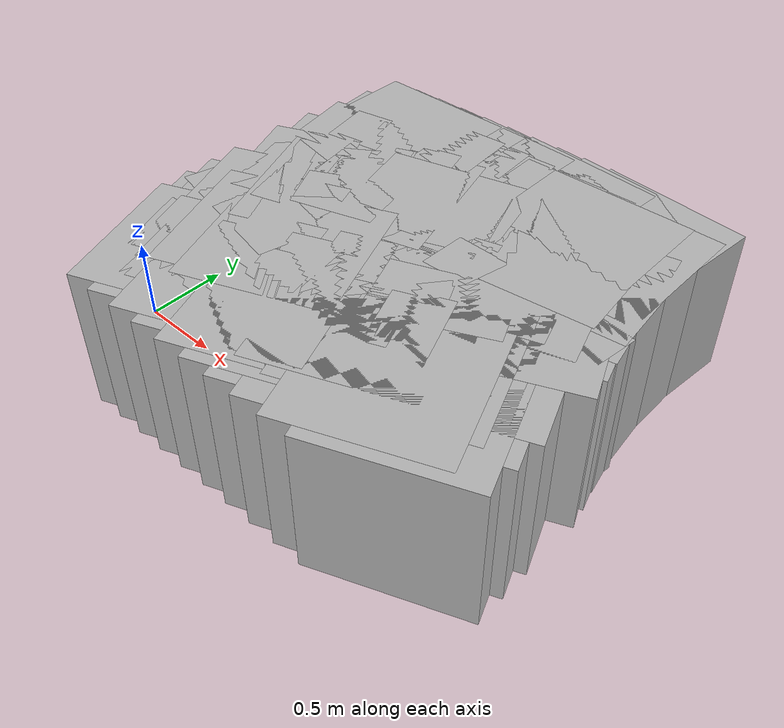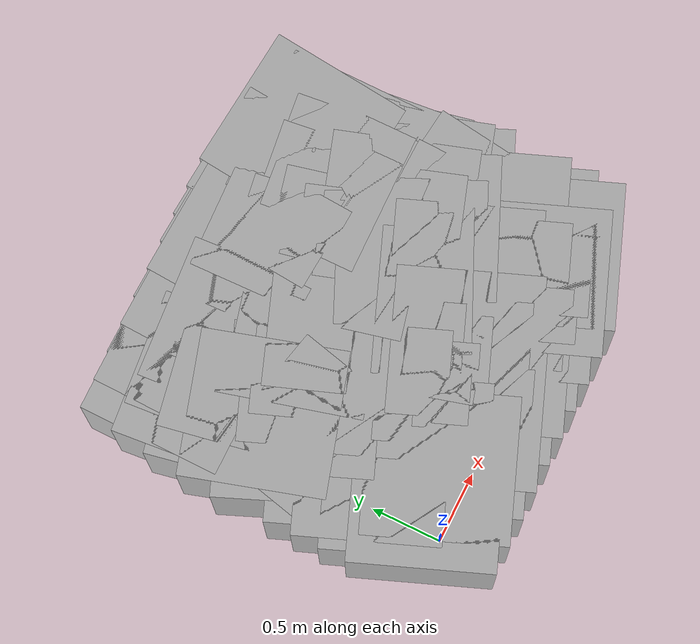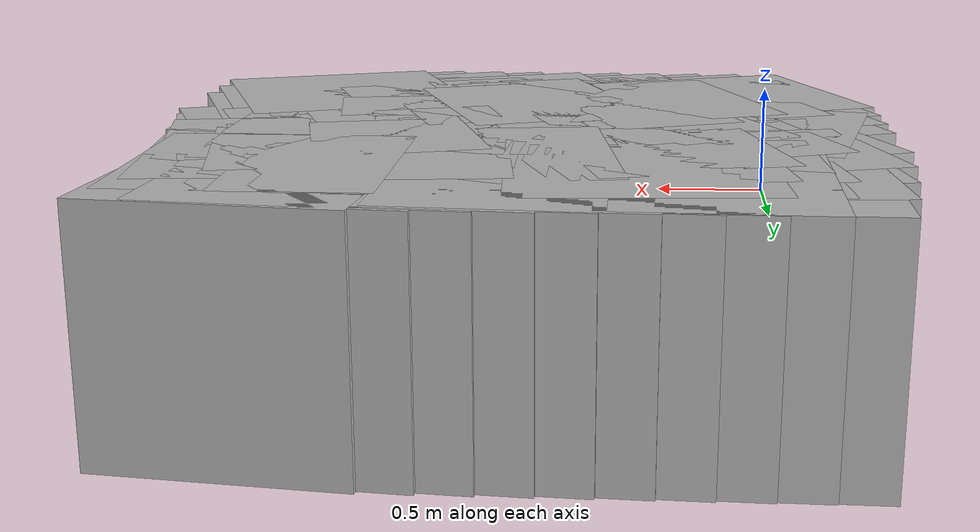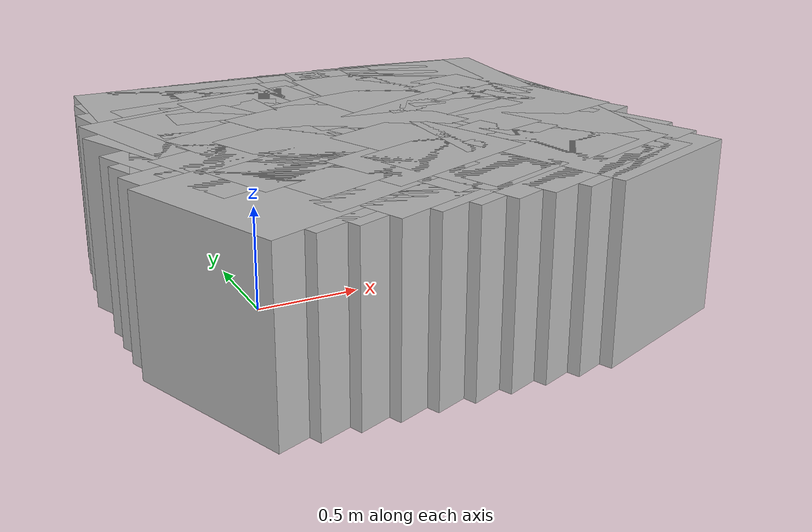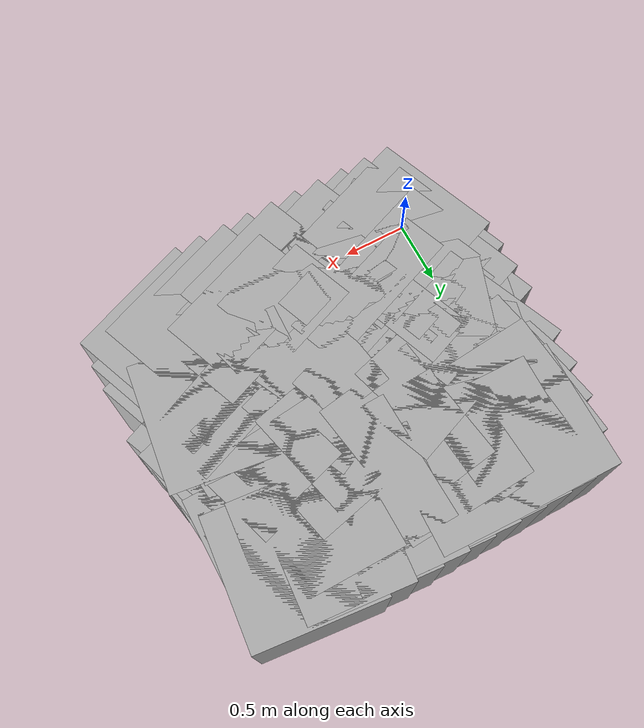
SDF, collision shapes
<?xml version="1.0" ?>
<sdf version="1.5">
  <model name="crops">
    <static>true</static>
    <include>
  <uri>model://crop</uri>
  <name>crop101</name>
  <pose>0.2 0.2 0.005 0 0 -1.2</pose>
</include>
<include>
  <uri>model://crop</uri>
  <name>crop102</name>
  <pose>0.4 0.2 0.005 0 0 -1.2</pose>
</include>
<include>
  <uri>model://crop</uri>
  <name>crop103</name>
  <pose>0.6 0.2 0.005 0 0 -1.2</pose>
</include>
<include>
  <uri>model://crop</uri>
  <name>crop104</name>
  <pose>0.8 0.2 0.005 0 0 -1.2</pose>
</include>
<include>
  <uri>model://crop</uri>
  <name>crop105</name>
  <pose>1.0 0.2 0.005 0 0 -1.2</pose>
</include>
<include>
  <uri>model://crop</uri>
  <name>crop106</name>
  <pose>1.2 0.2 0.005 0 0 -1.2</pose>
</include>
<include>
  <uri>model://crop</uri>
  <name>crop107</name>
  <pose>1.4 0.2 0.005 0 0 -1.2</pose>
</include>
<include>
  <uri>model://crop</uri>
  <name>crop108</name>
  <pose>1.6 0.2 0.005 0 0 -1.2</pose>
</include>
<include>
  <uri>model://crop</uri>
  <name>crop109</name>
  <pose>1.8 0.2 0.005 0 0 -1.2</pose>
</include>
<include>
  <uri>model://crop</uri>
  <name>crop110</name>
  <pose>2.0 0.2 0.005 0 0 -1.2</pose>
</include>
<include>
  <uri>model://crop</uri>
  <name>crop111</name>
  <pose>0.2 0.4 0.005 0 0 -1.2</pose>
</include>
<include>
  <uri>model://crop</uri>
  <name>crop112</name>
  <pose>0.4 0.4 0.005 0 0 -1.2</pose>
</include>
<include>
  <uri>model://crop</uri>
  <name>crop113</name>
  <pose>0.6 0.4 0.005 0 0 -1.2</pose>
</include>
<include>
  <uri>model://crop</uri>
  <name>crop114</name>
  <pose>0.8 0.4 0.005 0 0 -1.2</pose>
</include>
<include>
  <uri>model://crop</uri>
  <name>crop115</name>
  <pose>1.0 0.4 0.005 0 0 -1.2</pose>
</include>
<include>
  <uri>model://crop</uri>
  <name>crop116</name>
  <pose>1.2 0.4 0.005 0 0 -1.2</pose>
</include>
<include>
  <uri>model://crop</uri>
  <name>crop117</name>
  <pose>1.4 0.4 0.005 0 0 -1.2</pose>
</include>
<include>
  <uri>model://crop</uri>
  <name>crop118</name>
  <pose>1.6 0.4 0.005 0 0 -1.2</pose>
</include>
<include>
  <uri>model://crop</uri>
  <name>crop119</name>
  <pose>1.8 0.4 0.005 0 0 -1.2</pose>
</include>
<include>
  <uri>model://crop</uri>
  <name>crop120</name>
  <pose>2.0 0.4 0.005 0 0 -1.2</pose>
</include>
<include>
  <uri>model://crop</uri>
  <name>crop121</name>
  <pose>0.2 0.6 0.005 0 0 -1.2</pose>
</include>
<include>
  <uri>model://crop</uri>
  <name>crop122</name>
  <pose>0.4 0.6 0.005 0 0 -1.2</pose>
</include>
<include>
  <uri>model://crop</uri>
  <name>crop123</name>
  <pose>0.6 0.6 0.005 0 0 -1.2</pose>
</include>
<include>
  <uri>model://crop</uri>
  <name>crop124</name>
  <pose>0.8 0.6 0.005 0 0 -1.2</pose>
</include>
<include>
  <uri>model://crop</uri>
  <name>crop125</name>
  <pose>1.0 0.6 0.005 0 0 -1.2</pose>
</include>
<include>
  <uri>model://crop</uri>
  <name>crop126</name>
  <pose>1.2 0.6 0.005 0 0 -1.2</pose>
</include>
<include>
  <uri>model://crop</uri>
  <name>crop127</name>
  <pose>1.4 0.6 0.005 0 0 -1.2</pose>
</include>
<include>
  <uri>model://crop</uri>
  <name>crop128</name>
  <pose>1.6 0.6 0.005 0 0 -1.2</pose>
</include>
<include>
  <uri>model://crop</uri>
  <name>crop129</name>
  <pose>1.8 0.6 0.005 0 0 -1.2</pose>
</include>
<include>
  <uri>model://crop</uri>
  <name>crop130</name>
  <pose>2.0 0.6 0.005 0 0 -1.2</pose>
</include>
<include>
  <uri>model://crop</uri>
  <name>crop131</name>
  <pose>0.2 0.8 0.005 0 0 -1.2</pose>
</include>
<include>
  <uri>model://crop</uri>
  <name>crop132</name>
  <pose>0.4 0.8 0.005 0 0 -1.2</pose>
</include>
<include>
  <uri>model://crop</uri>
  <name>crop133</name>
  <pose>0.6 0.8 0.005 0 0 -1.2</pose>
</include>
<include>
  <uri>model://crop</uri>
  <name>crop134</name>
  <pose>0.8 0.8 0.005 0 0 -1.2</pose>
</include>
<include>
  <uri>model://crop</uri>
  <name>crop135</name>
  <pose>1.0 0.8 0.005 0 0 -1.2</pose>
</include>
<include>
  <uri>model://crop</uri>
  <name>crop136</name>
  <pose>1.2 0.8 0.005 0 0 -1.3</pose>
</include>
<include>
  <uri>model://crop</uri>
  <name>crop137</name>
  <pose>1.4 0.8 0.005 0 0 -1.4</pose>
</include>
<include>
  <uri>model://crop</uri>
  <name>crop138</name>
  <pose>1.6 0.8 0.005 0 0 -1.5</pose>
</include>
<include>
  <uri>model://crop</uri>
  <name>crop139</name>
  <pose>1.8 0.8 0.005 0 0 -1.6</pose>
</include>
<include>
  <uri>model://crop</uri>
  <name>crop140</name>
  <pose>2.0 0.8 0.005 0 0 -1.7</pose>
</include>
<include>
  <uri>model://crop</uri>
  <name>crop141</name>
  <pose>0.2 1.0 0.005 0 0 -1.8</pose>
</include>
<include>
  <uri>model://crop</uri>
  <name>crop142</name>
  <pose>0.4 1.0 0.005 0 0 -1.9</pose>
</include>
<include>
  <uri>model://crop</uri>
  <name>crop143</name>
  <pose>0.6 1.0 0.005 0 0 -1.10</pose>
</include>
<include>
  <uri>model://crop</uri>
  <name>crop144</name>
  <pose>0.8 1.0 0.005 0 0 -1.11</pose>
</include>
<include>
  <uri>model://crop</uri>
  <name>crop145</name>
  <pose>1.0 1.0 0.005 0 0 -1.12</pose>
</include>
<include>
  <uri>model://crop</uri>
  <name>crop146</name>
  <pose>1.2 1.0 0.005 0 0 -1.13</pose>
</include>
<include>
  <uri>model://crop</uri>
  <name>crop147</name>
  <pose>1.4 1.0 0.005 0 0 -1.14</pose>
</include>
<include>
  <uri>model://crop</uri>
  <name>crop148</name>
  <pose>1.6 1.0 0.005 0 0 -1.15</pose>
</include>
<include>
  <uri>model://crop</uri>
  <name>crop149</name>
  <pose>1.8 1.0 0.005 0 0 -1.16</pose>
</include>
<include>
  <uri>model://crop</uri>
  <name>crop150</name>
  <pose>2.0 1.0 0.005 0 0 -1.17</pose>
</include>
<include>
  <uri>model://crop</uri>
  <name>crop151</name>
  <pose>0.2 1.2 0.005 0 0 -1.18</pose>
</include>
<include>
  <uri>model://crop</uri>
  <name>crop152</name>
  <pose>0.4 1.2 0.005 0 0 -1.19</pose>
</include>
<include>
  <uri>model://crop</uri>
  <name>crop153</name>
  <pose>0.6 1.2 0.005 0 0 -1.20</pose>
</include>
<include>
  <uri>model://crop</uri>
  <name>crop154</name>
  <pose>0.8 1.2 0.005 0 0 -1.21</pose>
</include>
<include>
  <uri>model://crop</uri>
  <name>crop155</name>
  <pose>1.0 1.2 0.005 0 0 -1.22</pose>
</include>
<include>
  <uri>model://crop</uri>
  <name>crop156</name>
  <pose>1.2 1.2 0.005 0 0 -1.23</pose>
</include>
<include>
  <uri>model://crop</uri>
  <name>crop157</name>
  <pose>1.4 1.2 0.005 0 0 -1.24</pose>
</include>
<include>
  <uri>model://crop</uri>
  <name>crop158</name>
  <pose>1.6 1.2 0.005 0 0 -1.25</pose>
</include>
<include>
  <uri>model://crop</uri>
  <name>crop159</name>
  <pose>1.8 1.2 0.005 0 0 -1.26</pose>
</include>
<include>
  <uri>model://crop</uri>
  <name>crop160</name>
  <pose>2.0 1.2 0.005 0 0 -1.27</pose>
</include>
<include>
  <uri>model://crop</uri>
  <name>crop161</name>
  <pose>0.2 1.4 0.005 0 0 -1.28</pose>
</include>
<include>
  <uri>model://crop</uri>
  <name>crop162</name>
  <pose>0.4 1.4 0.005 0 0 -1.29</pose>
</include>
<include>
  <uri>model://crop</uri>
  <name>crop163</name>
  <pose>0.6 1.4 0.005 0 0 -1.30</pose>
</include>
<include>
  <uri>model://crop</uri>
  <name>crop164</name>
  <pose>0.8 1.4 0.005 0 0 -1.31</pose>
</include>
<include>
  <uri>model://crop</uri>
  <name>crop165</name>
  <pose>1.0 1.4 0.005 0 0 -1.32</pose>
</include>
<include>
  <uri>model://crop</uri>
  <name>crop166</name>
  <pose>1.2 1.4 0.005 0 0 -1.33</pose>
</include>
<include>
  <uri>model://crop</uri>
  <name>crop167</name>
  <pose>1.4 1.4 0.005 0 0 -1.34</pose>
</include>
<include>
  <uri>model://crop</uri>
  <name>crop168</name>
  <pose>1.6 1.4 0.005 0 0 -1.35</pose>
</include>
<include>
  <uri>model://crop</uri>
  <name>crop169</name>
  <pose>1.8 1.4 0.005 0 0 -1.36</pose>
</include>
<include>
  <uri>model://crop</uri>
  <name>crop170</name>
  <pose>2.0 1.4 0.005 0 0 -1.37</pose>
</include>
<include>
  <uri>model://crop</uri>
  <name>crop171</name>
  <pose>0.2 1.6 0.005 0 0 -1.38</pose>
</include>
<include>
  <uri>model://crop</uri>
  <name>crop172</name>
  <pose>0.4 1.6 0.005 0 0 -1.39</pose>
</include>
<include>
  <uri>model://crop</uri>
  <name>crop173</name>
  <pose>0.6 1.6 0.005 0 0 -1.40</pose>
</include>
<include>
  <uri>model://crop</uri>
  <name>crop174</name>
  <pose>0.8 1.6 0.005 0 0 -1.41</pose>
</include>
<include>
  <uri>model://crop</uri>
  <name>crop175</name>
  <pose>1.0 1.6 0.005 0 0 -1.42</pose>
</include>
<include>
  <uri>model://crop</uri>
  <name>crop176</name>
  <pose>1.2 1.6 0.005 0 0 -1.43</pose>
</include>
<include>
  <uri>model://crop</uri>
  <name>crop177</name>
  <pose>1.4 1.6 0.005 0 0 -1.44</pose>
</include>
<include>
  <uri>model://crop</uri>
  <name>crop178</name>
  <pose>1.6 1.6 0.005 0 0 -1.45</pose>
</include>
<include>
  <uri>model://crop</uri>
  <name>crop179</name>
  <pose>1.8 1.6 0.005 0 0 -1.46</pose>
</include>
<include>
  <uri>model://crop</uri>
  <name>crop180</name>
  <pose>2.0 1.6 0.005 0 0 -1.47</pose>
</include>
<include>
  <uri>model://crop</uri>
  <name>crop181</name>
  <pose>0.2 1.8 0.005 0 0 -1.48</pose>
</include>
<include>
  <uri>model://crop</uri>
  <name>crop182</name>
  <pose>0.4 1.8 0.005 0 0 -1.49</pose>
</include>
<include>
  <uri>model://crop</uri>
  <name>crop183</name>
  <pose>0.6 1.8 0.005 0 0 -1.50</pose>
</include>
<include>
  <uri>model://crop</uri>
  <name>crop184</name>
  <pose>0.8 1.8 0.005 0 0 -1.51</pose>
</include>
<include>
  <uri>model://crop</uri>
  <name>crop185</name>
  <pose>1.0 1.8 0.005 0 0 -1.52</pose>
</include>
<include>
  <uri>model://crop</uri>
  <name>crop186</name>
  <pose>1.2 1.8 0.005 0 0 -1.53</pose>
</include>
<include>
  <uri>model://crop</uri>
  <name>crop187</name>
  <pose>1.4 1.8 0.005 0 0 -1.54</pose>
</include>
<include>
  <uri>model://crop</uri>
  <name>crop188</name>
  <pose>1.6 1.8 0.005 0 0 -1.55</pose>
</include>
<include>
  <uri>model://crop</uri>
  <name>crop189</name>
  <pose>1.8 1.8 0.005 0 0 -1.56</pose>
</include>
<include>
  <uri>model://crop</uri>
  <name>crop190</name>
  <pose>2.0 1.8 0.005 0 0 -1.57</pose>
</include>
<include>
  <uri>model://crop</uri>
  <name>crop191</name>
  <pose>0.2 2.0 0.005 0 0 -1.58</pose>
</include>
<include>
  <uri>model://crop</uri>
  <name>crop192</name>
  <pose>0.4 2.0 0.005 0 0 -1.59</pose>
</include>
<include>
  <uri>model://crop</uri>
  <name>crop193</name>
  <pose>0.6 2.0 0.005 0 0 -1.60</pose>
</include>
<include>
  <uri>model://crop</uri>
  <name>crop194</name>
  <pose>0.8 2.0 0.005 0 0 -1.61</pose>
</include>
<include>
  <uri>model://crop</uri>
  <name>crop195</name>
  <pose>1.0 2.0 0.005 0 0 -1.62</pose>
</include>
<include>
  <uri>model://crop</uri>
  <name>crop196</name>
  <pose>1.2 2.0 0.005 0 0 -1.63</pose>
</include>
<include>
  <uri>model://crop</uri>
  <name>crop197</name>
  <pose>1.4 2.0 0.005 0 0 -1.64</pose>
</include>
<include>
  <uri>model://crop</uri>
  <name>crop198</name>
  <pose>1.6 2.0 0.005 0 0 -1.65</pose>
</include>
<include>
  <uri>model://crop</uri>
  <name>crop199</name>
  <pose>1.8 2.0 0.005 0 0 -1.66</pose>
</include>
<include>
  <uri>model://crop</uri>
  <name>crop200</name>
  <pose>2.0 2.0 0.005 0 0 -1.67</pose>
</include>
  </model>
</sdf>

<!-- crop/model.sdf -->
<sdf version="1.5">
  <model name="crop">
    <pose>0 0 0.75  0 0 0</pose>
    <static>true</static>
    <link name="link">
      <inertial>
        <mass>40.0</mass>
        <inertia>
          <ixx>1</ixx>
          <ixy>0</ixy>
          <ixz>0</ixz>
          <iyy>1</iyy>
          <iyz>0</iyz>
          <izz>1</izz>
        </inertia>
      </inertial>
      <collision name="collision">
        <geometry>
          <box>
              <size>1 1 1</size>
          </box>
        </geometry>
	<surface>
          <contact>
            <ode>
              <max_vel>0.1</max_vel>
              <min_depth>0.001</min_depth>
            </ode>
          </contact>
        </surface>
      </collision>
      <visual name="visual">
        <geometry>
          <mesh>
            <uri>model://crop/meshes/oliveTree.dae</uri>
	    <scale>1 1 1</scale>
          </mesh>
	</geometry>
      </visual>
    </link>
  </model>
</sdf>
